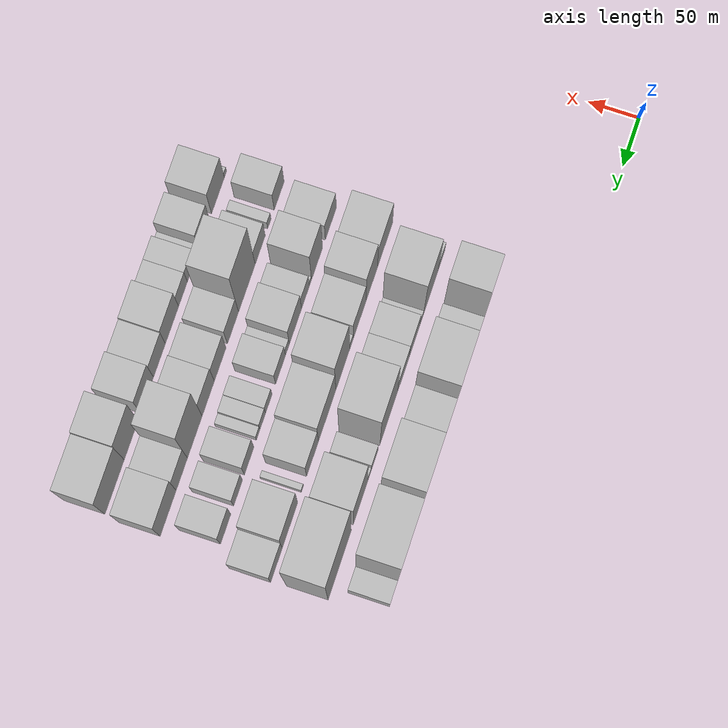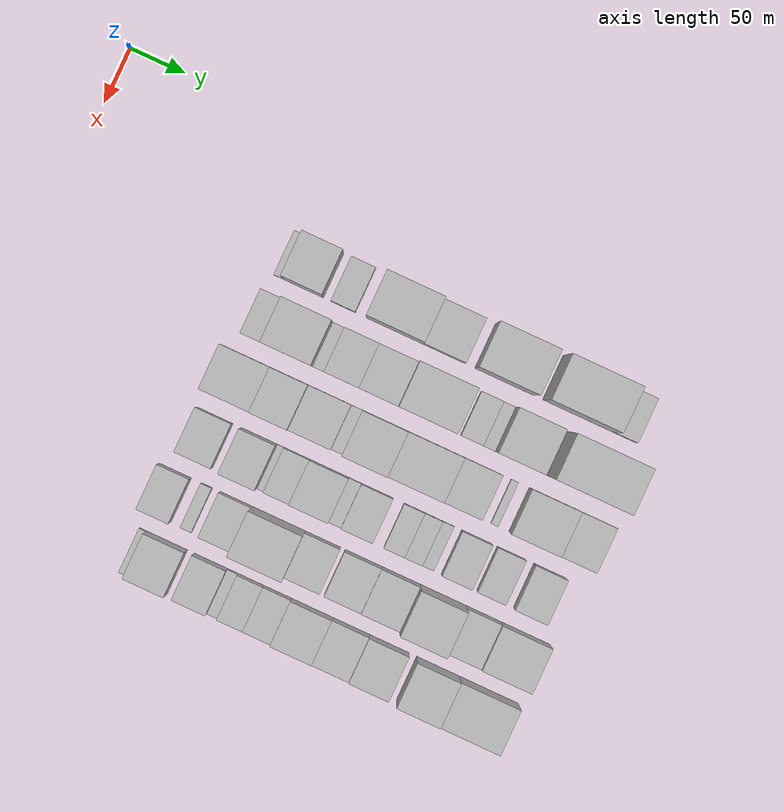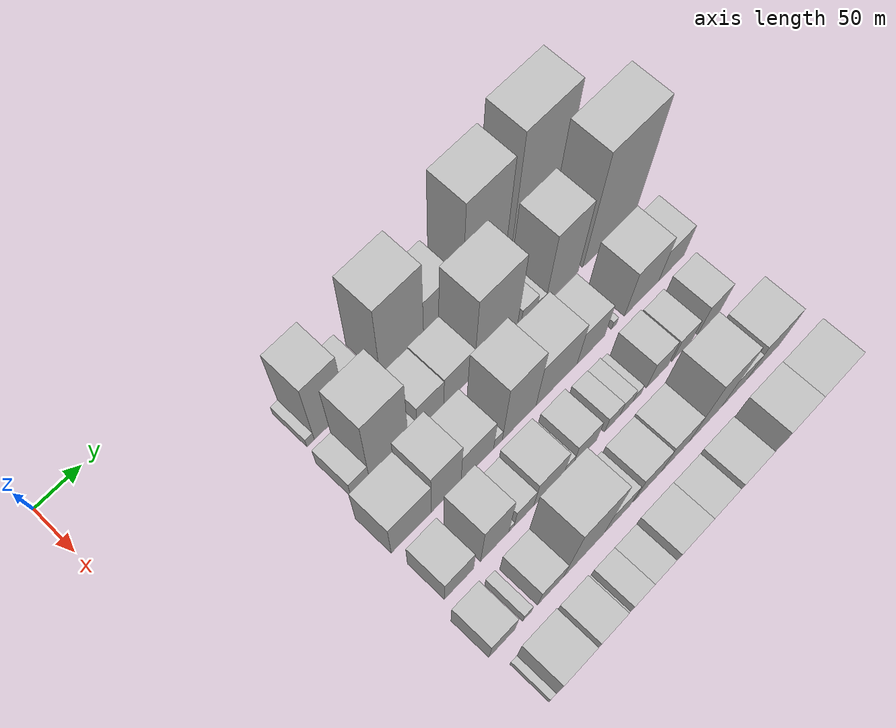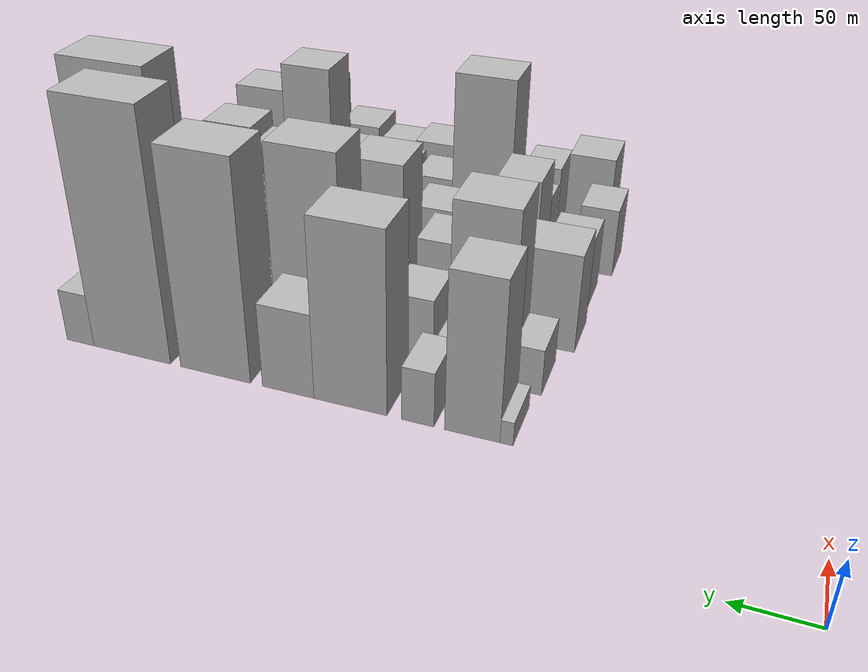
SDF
<sdf version="1.6">
 <world name="default">
  <model name="building_31">
   <static>1</static>
   <pose>100.0000 190.4567 0 0.000000 0.000000 0.000000</pose>
   <link name="link">
    <pose>0 0 9.00 0 0 0</pose>
    <collision name="collision"><geometry><box><size>40.0000 8.4245 18.0000</size></box></geometry></collision>
    <visual name="visual">
     <cast_shadows>0</cast_shadows>
     <geometry><box><size>40.0000 8.4245 18.0000</size></box></geometry>
     <material>
      <script>
       <uri>model://HANNAS_wall/materials/scripts</uri>
       <uri>model://HANNAS_wall/materials/textures</uri>
       <name>vrc/HANNAS_wall</name>
      </script>
     </material>
    </visual>
   </link>
  </model>
  <model name="building_32">
   <static>1</static>
   <pose>100.0000 212.8879 0 0.000000 0.000000 0.000000</pose>
   <link name="link">
    <pose>0 0 60.00 0 0 0</pose>
    <collision name="collision"><geometry><box><size>40.0000 36.4380 120.0000</size></box></geometry></collision>
    <visual name="visual">
     <cast_shadows>0</cast_shadows>
     <geometry><box><size>40.0000 36.4380 120.0000</size></box></geometry>
     <material>
      <script>
       <uri>model://HANNAS_wall/materials/scripts</uri>
       <uri>model://HANNAS_wall/materials/textures</uri>
       <name>vrc/HANNAS_wall</name>
      </script>
     </material>
    </visual>
   </link>
  </model>
  <model name="building_33">
   <static>1</static>
   <pose>100.0000 249.1040 0 0.000000 0.000000 0.000000</pose>
   <link name="link">
    <pose>0 0 21.00 0 0 0</pose>
    <collision name="collision"><geometry><box><size>40.0000 21.9940 42.0000</size></box></geometry></collision>
    <visual name="visual">
     <cast_shadows>0</cast_shadows>
     <geometry><box><size>40.0000 21.9940 42.0000</size></box></geometry>
     <material>
      <script>
       <uri>model://HANNAS_wall/materials/scripts</uri>
       <uri>model://HANNAS_wall/materials/textures</uri>
       <name>vrc/HANNAS_wall</name>
      </script>
     </material>
    </visual>
   </link>
  </model>
  <model name="building_34">
   <static>1</static>
   <pose>100.0000 295.8388 0 0.000000 0.000000 0.000000</pose>
   <link name="link">
    <pose>0 0 69.00 0 0 0</pose>
    <collision name="collision"><geometry><box><size>40.0000 51.4757 138.0000</size></box></geometry></collision>
    <visual name="visual">
     <cast_shadows>0</cast_shadows>
     <geometry><box><size>40.0000 51.4757 138.0000</size></box></geometry>
     <material>
      <script>
       <uri>model://HANNAS_wall/materials/scripts</uri>
       <uri>model://HANNAS_wall/materials/textures</uri>
       <name>vrc/HANNAS_wall</name>
      </script>
     </material>
    </visual>
   </link>
  </model>
  <model name="building_35">
   <static>1</static>
   <pose>100.0000 340.4338 0 0.000000 0.000000 0.000000</pose>
   <link name="link">
    <pose>0 0 33.00 0 0 0</pose>
    <collision name="collision"><geometry><box><size>40.0000 37.7142 66.0000</size></box></geometry></collision>
    <visual name="visual">
     <cast_shadows>0</cast_shadows>
     <geometry><box><size>40.0000 37.7142 66.0000</size></box></geometry>
     <material>
      <script>
       <uri>model://HANNAS_wall/materials/scripts</uri>
       <uri>model://HANNAS_wall/materials/textures</uri>
       <name>vrc/HANNAS_wall</name>
      </script>
     </material>
    </visual>
   </link>
  </model>
  <model name="building_36">
   <static>1</static>
   <pose>100.0000 395.0340 0 0.000000 0.000000 0.000000</pose>
   <link name="link">
    <pose>0 0 84.00 0 0 0</pose>
    <collision name="collision"><geometry><box><size>40.0000 53.4863 168.0000</size></box></geometry></collision>
    <visual name="visual">
     <cast_shadows>0</cast_shadows>
     <geometry><box><size>40.0000 53.4863 168.0000</size></box></geometry>
     <material>
      <script>
       <uri>model://HANNAS_wall/materials/scripts</uri>
       <uri>model://HANNAS_wall/materials/textures</uri>
       <name>vrc/HANNAS_wall</name>
      </script>
     </material>
    </visual>
   </link>
  </model>
  <model name="building_37">
   <static>1</static>
   <pose>100.0000 460.7381 0 0.000000 0.000000 0.000000</pose>
   <link name="link">
    <pose>0 0 96.00 0 0 0</pose>
    <collision name="collision"><geometry><box><size>40.0000 61.9219 192.0000</size></box></geometry></collision>
    <visual name="visual">
     <cast_shadows>0</cast_shadows>
     <geometry><box><size>40.0000 61.9219 192.0000</size></box></geometry>
     <material>
      <script>
       <uri>model://HANNAS_wall/materials/scripts</uri>
       <uri>model://HANNAS_wall/materials/textures</uri>
       <name>vrc/HANNAS_wall</name>
      </script>
     </material>
    </visual>
   </link>
  </model>
  <model name="building_38">
   <static>1</static>
   <pose>100.0000 502.8438 0 0.000000 0.000000 0.000000</pose>
   <link name="link">
    <pose>0 0 21.00 0 0 0</pose>
    <collision name="collision"><geometry><box><size>40.0000 22.2894 42.0000</size></box></geometry></collision>
    <visual name="visual">
     <cast_shadows>0</cast_shadows>
     <geometry><box><size>40.0000 22.2894 42.0000</size></box></geometry>
     <material>
      <script>
       <uri>model://HANNAS_wall/materials/scripts</uri>
       <uri>model://HANNAS_wall/materials/textures</uri>
       <name>vrc/HANNAS_wall</name>
      </script>
     </material>
    </visual>
   </link>
  </model>
  <model name="building_82">
   <static>1</static>
   <pose>155.0000 192.0896 0 0.000000 0.000000 0.000000</pose>
   <link name="link">
    <pose>0 0 18.00 0 0 0</pose>
    <collision name="collision"><geometry><box><size>40.0000 20.5973 36.0000</size></box></geometry></collision>
    <visual name="visual">
     <cast_shadows>0</cast_shadows>
     <geometry><box><size>40.0000 20.5973 36.0000</size></box></geometry>
     <material>
      <script>
       <uri>model://HANNAS_wall/materials/scripts</uri>
       <uri>model://HANNAS_wall/materials/textures</uri>
       <name>vrc/HANNAS_wall</name>
      </script>
     </material>
    </visual>
   </link>
  </model>
  <model name="building_83">
   <static>1</static>
   <pose>155.0000 224.6749 0 0.000000 0.000000 0.000000</pose>
   <link name="link">
    <pose>0 0 67.50 0 0 0</pose>
    <collision name="collision"><geometry><box><size>40.0000 44.5734 135.0000</size></box></geometry></collision>
    <visual name="visual">
     <cast_shadows>0</cast_shadows>
     <geometry><box><size>40.0000 44.5734 135.0000</size></box></geometry>
     <material>
      <script>
       <uri>model://HANNAS_wall/materials/scripts</uri>
       <uri>model://HANNAS_wall/materials/textures</uri>
       <name>vrc/HANNAS_wall</name>
      </script>
     </material>
    </visual>
   </link>
  </model>
  <model name="building_84">
   <static>1</static>
   <pose>155.0000 252.2506 0 0.000000 0.000000 0.000000</pose>
   <link name="link">
    <pose>0 0 12.00 0 0 0</pose>
    <collision name="collision"><geometry><box><size>40.0000 10.5779 24.0000</size></box></geometry></collision>
    <visual name="visual">
     <cast_shadows>0</cast_shadows>
     <geometry><box><size>40.0000 10.5779 24.0000</size></box></geometry>
     <material>
      <script>
       <uri>model://HANNAS_wall/materials/scripts</uri>
       <uri>model://HANNAS_wall/materials/textures</uri>
       <name>vrc/HANNAS_wall</name>
      </script>
     </material>
    </visual>
   </link>
  </model>
  <model name="building_85">
   <static>1</static>
   <pose>155.0000 273.1784 0 0.000000 0.000000 0.000000</pose>
   <link name="link">
    <pose>0 0 28.50 0 0 0</pose>
    <collision name="collision"><geometry><box><size>40.0000 31.2779 57.0000</size></box></geometry></collision>
    <visual name="visual">
     <cast_shadows>0</cast_shadows>
     <geometry><box><size>40.0000 31.2779 57.0000</size></box></geometry>
     <material>
      <script>
       <uri>model://HANNAS_wall/materials/scripts</uri>
       <uri>model://HANNAS_wall/materials/textures</uri>
       <name>vrc/HANNAS_wall</name>
      </script>
     </material>
    </visual>
   </link>
  </model>
  <model name="building_86">
   <static>1</static>
   <pose>155.0000 306.5657 0 0.000000 0.000000 0.000000</pose>
   <link name="link">
    <pose>0 0 30.00 0 0 0</pose>
    <collision name="collision"><geometry><box><size>40.0000 35.4967 60.0000</size></box></geometry></collision>
    <visual name="visual">
     <cast_shadows>0</cast_shadows>
     <geometry><box><size>40.0000 35.4967 60.0000</size></box></geometry>
     <material>
      <script>
       <uri>model://HANNAS_wall/materials/scripts</uri>
       <uri>model://HANNAS_wall/materials/textures</uri>
       <name>vrc/HANNAS_wall</name>
      </script>
     </material>
    </visual>
   </link>
  </model>
  <model name="building_87">
   <static>1</static>
   <pose>155.0000 350.0649 0 0.000000 0.000000 0.000000</pose>
   <link name="link">
    <pose>0 0 76.50 0 0 0</pose>
    <collision name="collision"><geometry><box><size>40.0000 51.5017 153.0000</size></box></geometry></collision>
    <visual name="visual">
     <cast_shadows>0</cast_shadows>
     <geometry><box><size>40.0000 51.5017 153.0000</size></box></geometry>
     <material>
      <script>
       <uri>model://HANNAS_wall/materials/scripts</uri>
       <uri>model://HANNAS_wall/materials/textures</uri>
       <name>vrc/HANNAS_wall</name>
      </script>
     </material>
    </visual>
   </link>
  </model>
  <model name="building_88">
   <static>1</static>
   <pose>155.0000 390.8027 0 0.000000 0.000000 0.000000</pose>
   <link name="link">
    <pose>0 0 19.50 0 0 0</pose>
    <collision name="collision"><geometry><box><size>40.0000 19.9741 39.0000</size></box></geometry></collision>
    <visual name="visual">
     <cast_shadows>0</cast_shadows>
     <geometry><box><size>40.0000 19.9741 39.0000</size></box></geometry>
     <material>
      <script>
       <uri>model://HANNAS_wall/materials/scripts</uri>
       <uri>model://HANNAS_wall/materials/textures</uri>
       <name>vrc/HANNAS_wall</name>
      </script>
     </material>
    </visual>
   </link>
  </model>
  <model name="building_89">
   <static>1</static>
   <pose>155.0000 406.2895 0 0.000000 0.000000 0.000000</pose>
   <link name="link">
    <pose>0 0 12.00 0 0 0</pose>
    <collision name="collision"><geometry><box><size>40.0000 10.9995 24.0000</size></box></geometry></collision>
    <visual name="visual">
     <cast_shadows>0</cast_shadows>
     <geometry><box><size>40.0000 10.9995 24.0000</size></box></geometry>
     <material>
      <script>
       <uri>model://HANNAS_wall/materials/scripts</uri>
       <uri>model://HANNAS_wall/materials/textures</uri>
       <name>vrc/HANNAS_wall</name>
      </script>
     </material>
    </visual>
   </link>
  </model>
  <model name="building_90">
   <static>1</static>
   <pose>155.0000 432.6133 0 0.000000 0.000000 0.000000</pose>
   <link name="link">
    <pose>0 0 64.50 0 0 0</pose>
    <collision name="collision"><geometry><box><size>40.0000 41.6481 129.0000</size></box></geometry></collision>
    <visual name="visual">
     <cast_shadows>0</cast_shadows>
     <geometry><box><size>40.0000 41.6481 129.0000</size></box></geometry>
     <material>
      <script>
       <uri>model://HANNAS_wall/materials/scripts</uri>
       <uri>model://HANNAS_wall/materials/textures</uri>
       <name>vrc/HANNAS_wall</name>
      </script>
     </material>
    </visual>
   </link>
  </model>
  <model name="building_91">
   <static>1</static>
   <pose>155.0000 492.7192 0 0.000000 0.000000 0.000000</pose>
   <link name="link">
    <pose>0 0 96.00 0 0 0</pose>
    <collision name="collision"><geometry><box><size>40.0000 66.5637 192.0000</size></box></geometry></collision>
    <visual name="visual">
     <cast_shadows>0</cast_shadows>
     <geometry><box><size>40.0000 66.5637 192.0000</size></box></geometry>
     <material>
      <script>
       <uri>model://HANNAS_wall/materials/scripts</uri>
       <uri>model://HANNAS_wall/materials/textures</uri>
       <name>vrc/HANNAS_wall</name>
      </script>
     </material>
    </visual>
   </link>
  </model>
  <model name="building_130">
   <static>1</static>
   <pose>210.0000 194.3836 0 0.000000 0.000000 0.000000</pose>
   <link name="link">
    <pose>0 0 39.00 0 0 0</pose>
    <collision name="collision"><geometry><box><size>40.0000 45.3554 78.0000</size></box></geometry></collision>
    <visual name="visual">
     <cast_shadows>0</cast_shadows>
     <geometry><box><size>40.0000 45.3554 78.0000</size></box></geometry>
     <material>
      <script>
       <uri>model://HANNAS_wall/materials/scripts</uri>
       <uri>model://HANNAS_wall/materials/textures</uri>
       <name>vrc/HANNAS_wall</name>
      </script>
     </material>
    </visual>
   </link>
  </model>
  <model name="building_131">
   <static>1</static>
   <pose>210.0000 234.0356 0 0.000000 0.000000 0.000000</pose>
   <link name="link">
    <pose>0 0 49.50 0 0 0</pose>
    <collision name="collision"><geometry><box><size>40.0000 33.9487 99.0000</size></box></geometry></collision>
    <visual name="visual">
     <cast_shadows>0</cast_shadows>
     <geometry><box><size>40.0000 33.9487 99.0000</size></box></geometry>
     <material>
      <script>
       <uri>model://HANNAS_wall/materials/scripts</uri>
       <uri>model://HANNAS_wall/materials/textures</uri>
       <name>vrc/HANNAS_wall</name>
      </script>
     </material>
    </visual>
   </link>
  </model>
  <model name="building_132">
   <static>1</static>
   <pose>210.0000 270.1150 0 0.000000 0.000000 0.000000</pose>
   <link name="link">
    <pose>0 0 34.50 0 0 0</pose>
    <collision name="collision"><geometry><box><size>40.0000 38.2101 69.0000</size></box></geometry></collision>
    <visual name="visual">
     <cast_shadows>0</cast_shadows>
     <geometry><box><size>40.0000 38.2101 69.0000</size></box></geometry>
     <material>
      <script>
       <uri>model://HANNAS_wall/materials/scripts</uri>
       <uri>model://HANNAS_wall/materials/textures</uri>
       <name>vrc/HANNAS_wall</name>
      </script>
     </material>
    </visual>
   </link>
  </model>
  <model name="building_133">
   <static>1</static>
   <pose>210.0000 294.3600 0 0.000000 0.000000 0.000000</pose>
   <link name="link">
    <pose>0 0 12.00 0 0 0</pose>
    <collision name="collision"><geometry><box><size>40.0000 10.2799 24.0000</size></box></geometry></collision>
    <visual name="visual">
     <cast_shadows>0</cast_shadows>
     <geometry><box><size>40.0000 10.2799 24.0000</size></box></geometry>
     <material>
      <script>
       <uri>model://HANNAS_wall/materials/scripts</uri>
       <uri>model://HANNAS_wall/materials/textures</uri>
       <name>vrc/HANNAS_wall</name>
      </script>
     </material>
    </visual>
   </link>
  </model>
  <model name="building_134">
   <static>1</static>
   <pose>210.0000 319.7138 0 0.000000 0.000000 0.000000</pose>
   <link name="link">
    <pose>0 0 61.50 0 0 0</pose>
    <collision name="collision"><geometry><box><size>40.0000 40.4276 123.0000</size></box></geometry></collision>
    <visual name="visual">
     <cast_shadows>0</cast_shadows>
     <geometry><box><size>40.0000 40.4276 123.0000</size></box></geometry>
     <material>
      <script>
       <uri>model://HANNAS_wall/materials/scripts</uri>
       <uri>model://HANNAS_wall/materials/textures</uri>
       <name>vrc/HANNAS_wall</name>
      </script>
     </material>
    </visual>
   </link>
  </model>
  <model name="building_135">
   <static>1</static>
   <pose>210.0000 365.1604 0 0.000000 0.000000 0.000000</pose>
   <link name="link">
    <pose>0 0 43.50 0 0 0</pose>
    <collision name="collision"><geometry><box><size>40.0000 50.4655 87.0000</size></box></geometry></collision>
    <visual name="visual">
     <cast_shadows>0</cast_shadows>
     <geometry><box><size>40.0000 50.4655 87.0000</size></box></geometry>
     <material>
      <script>
       <uri>model://HANNAS_wall/materials/scripts</uri>
       <uri>model://HANNAS_wall/materials/textures</uri>
       <name>vrc/HANNAS_wall</name>
      </script>
     </material>
    </visual>
   </link>
  </model>
  <model name="building_136">
   <static>1</static>
   <pose>210.0000 407.5701 0 0.000000 0.000000 0.000000</pose>
   <link name="link">
    <pose>0 0 33.00 0 0 0</pose>
    <collision name="collision"><geometry><box><size>40.0000 34.3540 66.0000</size></box></geometry></collision>
    <visual name="visual">
     <cast_shadows>0</cast_shadows>
     <geometry><box><size>40.0000 34.3540 66.0000</size></box></geometry>
     <material>
      <script>
       <uri>model://HANNAS_wall/materials/scripts</uri>
       <uri>model://HANNAS_wall/materials/textures</uri>
       <name>vrc/HANNAS_wall</name>
      </script>
     </material>
    </visual>
   </link>
  </model>
  <model name="building_137">
   <static>1</static>
   <pose>210.0000 436.9792 0 0.000000 0.000000 0.000000</pose>
   <link name="link">
    <pose>0 0 7.50 0 0 0</pose>
    <collision name="collision"><geometry><box><size>40.0000 6.4642 15.0000</size></box></geometry></collision>
    <visual name="visual">
     <cast_shadows>0</cast_shadows>
     <geometry><box><size>40.0000 6.4642 15.0000</size></box></geometry>
     <material>
      <script>
       <uri>model://HANNAS_wall/materials/scripts</uri>
       <uri>model://HANNAS_wall/materials/textures</uri>
       <name>vrc/HANNAS_wall</name>
      </script>
     </material>
    </visual>
   </link>
  </model>
  <model name="building_138">
   <static>1</static>
   <pose>210.0000 472.3123 0 0.000000 0.000000 0.000000</pose>
   <link name="link">
    <pose>0 0 42.00 0 0 0</pose>
    <collision name="collision"><geometry><box><size>40.0000 44.2020 84.0000</size></box></geometry></collision>
    <visual name="visual">
     <cast_shadows>0</cast_shadows>
     <geometry><box><size>40.0000 44.2020 84.0000</size></box></geometry>
     <material>
      <script>
       <uri>model://HANNAS_wall/materials/scripts</uri>
       <uri>model://HANNAS_wall/materials/textures</uri>
       <name>vrc/HANNAS_wall</name>
      </script>
     </material>
    </visual>
   </link>
  </model>
  <model name="building_139">
   <static>1</static>
   <pose>210.0000 510.9368 0 0.000000 0.000000 0.000000</pose>
   <link name="link">
    <pose>0 0 28.50 0 0 0</pose>
    <collision name="collision"><geometry><box><size>40.0000 33.0471 57.0000</size></box></geometry></collision>
    <visual name="visual">
     <cast_shadows>0</cast_shadows>
     <geometry><box><size>40.0000 33.0471 57.0000</size></box></geometry>
     <material>
      <script>
       <uri>model://HANNAS_wall/materials/scripts</uri>
       <uri>model://HANNAS_wall/materials/textures</uri>
       <name>vrc/HANNAS_wall</name>
      </script>
     </material>
    </visual>
   </link>
  </model>
  <model name="building_182">
   <static>1</static>
   <pose>265.0000 190.9287 0 0.000000 0.000000 0.000000</pose>
   <link name="link">
    <pose>0 0 28.50 0 0 0</pose>
    <collision name="collision"><geometry><box><size>40.0000 32.7813 57.0000</size></box></geometry></collision>
    <visual name="visual">
     <cast_shadows>0</cast_shadows>
     <geometry><box><size>40.0000 32.7813 57.0000</size></box></geometry>
     <material>
      <script>
       <uri>model://HANNAS_wall/materials/scripts</uri>
       <uri>model://HANNAS_wall/materials/textures</uri>
       <name>vrc/HANNAS_wall</name>
      </script>
     </material>
    </visual>
   </link>
  </model>
  <model name="building_183">
   <static>1</static>
   <pose>265.0000 231.5340 0 0.000000 0.000000 0.000000</pose>
   <link name="link">
    <pose>0 0 49.50 0 0 0</pose>
    <collision name="collision"><geometry><box><size>40.0000 32.4292 99.0000</size></box></geometry></collision>
    <visual name="visual">
     <cast_shadows>0</cast_shadows>
     <geometry><box><size>40.0000 32.4292 99.0000</size></box></geometry>
     <material>
      <script>
       <uri>model://HANNAS_wall/materials/scripts</uri>
       <uri>model://HANNAS_wall/materials/textures</uri>
       <name>vrc/HANNAS_wall</name>
      </script>
     </material>
    </visual>
   </link>
  </model>
  <model name="building_184">
   <static>1</static>
   <pose>265.0000 250.7761 0 0.000000 0.000000 0.000000</pose>
   <link name="link">
    <pose>0 0 7.50 0 0 0</pose>
    <collision name="collision"><geometry><box><size>40.0000 6.0551 15.0000</size></box></geometry></collision>
    <visual name="visual">
     <cast_shadows>0</cast_shadows>
     <geometry><box><size>40.0000 6.0551 15.0000</size></box></geometry>
     <material>
      <script>
       <uri>model://HANNAS_wall/materials/scripts</uri>
       <uri>model://HANNAS_wall/materials/textures</uri>
       <name>vrc/HANNAS_wall</name>
      </script>
     </material>
    </visual>
   </link>
  </model>
  <model name="building_185">
   <static>1</static>
   <pose>265.0000 265.3908 0 0.000000 0.000000 0.000000</pose>
   <link name="link">
    <pose>0 0 22.50 0 0 0</pose>
    <collision name="collision"><geometry><box><size>40.0000 23.1744 45.0000</size></box></geometry></collision>
    <visual name="visual">
     <cast_shadows>0</cast_shadows>
     <geometry><box><size>40.0000 23.1744 45.0000</size></box></geometry>
     <material>
      <script>
       <uri>model://HANNAS_wall/materials/scripts</uri>
       <uri>model://HANNAS_wall/materials/textures</uri>
       <name>vrc/HANNAS_wall</name>
      </script>
     </material>
    </visual>
   </link>
  </model>
  <model name="building_186">
   <static>1</static>
   <pose>265.0000 294.6903 0 0.000000 0.000000 0.000000</pose>
   <link name="link">
    <pose>0 0 31.50 0 0 0</pose>
    <collision name="collision"><geometry><box><size>40.0000 35.4244 63.0000</size></box></geometry></collision>
    <visual name="visual">
     <cast_shadows>0</cast_shadows>
     <geometry><box><size>40.0000 35.4244 63.0000</size></box></geometry>
     <material>
      <script>
       <uri>model://HANNAS_wall/materials/scripts</uri>
       <uri>model://HANNAS_wall/materials/textures</uri>
       <name>vrc/HANNAS_wall</name>
      </script>
     </material>
    </visual>
   </link>
  </model>
  <model name="building_187">
   <static>1</static>
   <pose>265.0000 318.0690 0 0.000000 0.000000 0.000000</pose>
   <link name="link">
    <pose>0 0 13.50 0 0 0</pose>
    <collision name="collision"><geometry><box><size>40.0000 11.3331 27.0000</size></box></geometry></collision>
    <visual name="visual">
     <cast_shadows>0</cast_shadows>
     <geometry><box><size>40.0000 11.3331 27.0000</size></box></geometry>
     <material>
      <script>
       <uri>model://HANNAS_wall/materials/scripts</uri>
       <uri>model://HANNAS_wall/materials/textures</uri>
       <name>vrc/HANNAS_wall</name>
      </script>
     </material>
    </visual>
   </link>
  </model>
  <model name="building_188">
   <static>1</static>
   <pose>265.0000 338.0151 0 0.000000 0.000000 0.000000</pose>
   <link name="link">
    <pose>0 0 24.00 0 0 0</pose>
    <collision name="collision"><geometry><box><size>40.0000 28.5590 48.0000</size></box></geometry></collision>
    <visual name="visual">
     <cast_shadows>0</cast_shadows>
     <geometry><box><size>40.0000 28.5590 48.0000</size></box></geometry>
     <material>
      <script>
       <uri>model://HANNAS_wall/materials/scripts</uri>
       <uri>model://HANNAS_wall/materials/textures</uri>
       <name>vrc/HANNAS_wall</name>
      </script>
     </material>
    </visual>
   </link>
  </model>
  <model name="building_189">
   <static>1</static>
   <pose>265.0000 371.6639 0 0.000000 0.000000 0.000000</pose>
   <link name="link">
    <pose>0 0 16.50 0 0 0</pose>
    <collision name="collision"><geometry><box><size>40.0000 18.7387 33.0000</size></box></geometry></collision>
    <visual name="visual">
     <cast_shadows>0</cast_shadows>
     <geometry><box><size>40.0000 18.7387 33.0000</size></box></geometry>
     <material>
      <script>
       <uri>model://HANNAS_wall/materials/scripts</uri>
       <uri>model://HANNAS_wall/materials/textures</uri>
       <name>vrc/HANNAS_wall</name>
      </script>
     </material>
    </visual>
   </link>
  </model>
  <model name="building_190">
   <static>1</static>
   <pose>265.0000 389.1189 0 0.000000 0.000000 0.000000</pose>
   <link name="link">
    <pose>0 0 15.00 0 0 0</pose>
    <collision name="collision"><geometry><box><size>40.0000 16.1715 30.0000</size></box></geometry></collision>
    <visual name="visual">
     <cast_shadows>0</cast_shadows>
     <geometry><box><size>40.0000 16.1715 30.0000</size></box></geometry>
     <material>
      <script>
       <uri>model://HANNAS_wall/materials/scripts</uri>
       <uri>model://HANNAS_wall/materials/textures</uri>
       <name>vrc/HANNAS_wall</name>
      </script>
     </material>
    </visual>
   </link>
  </model>
  <model name="building_191">
   <static>1</static>
   <pose>265.0000 402.3211 0 0.000000 0.000000 0.000000</pose>
   <link name="link">
    <pose>0 0 10.50 0 0 0</pose>
    <collision name="collision"><geometry><box><size>40.0000 10.2328 21.0000</size></box></geometry></collision>
    <visual name="visual">
     <cast_shadows>0</cast_shadows>
     <geometry><box><size>40.0000 10.2328 21.0000</size></box></geometry>
     <material>
      <script>
       <uri>model://HANNAS_wall/materials/scripts</uri>
       <uri>model://HANNAS_wall/materials/textures</uri>
       <name>vrc/HANNAS_wall</name>
      </script>
     </material>
    </visual>
   </link>
  </model>
  <model name="building_192">
   <static>1</static>
   <pose>265.0000 427.9994 0 0.000000 0.000000 0.000000</pose>
   <link name="link">
    <pose>0 0 27.00 0 0 0</pose>
    <collision name="collision"><geometry><box><size>40.0000 27.1240 54.0000</size></box></geometry></collision>
    <visual name="visual">
     <cast_shadows>0</cast_shadows>
     <geometry><box><size>40.0000 27.1240 54.0000</size></box></geometry>
     <material>
      <script>
       <uri>model://HANNAS_wall/materials/scripts</uri>
       <uri>model://HANNAS_wall/materials/textures</uri>
       <name>vrc/HANNAS_wall</name>
      </script>
     </material>
    </visual>
   </link>
  </model>
  <model name="building_193">
   <static>1</static>
   <pose>265.0000 459.2048 0 0.000000 0.000000 0.000000</pose>
   <link name="link">
    <pose>0 0 22.50 0 0 0</pose>
    <collision name="collision"><geometry><box><size>40.0000 25.2868 45.0000</size></box></geometry></collision>
    <visual name="visual">
     <cast_shadows>0</cast_shadows>
     <geometry><box><size>40.0000 25.2868 45.0000</size></box></geometry>
     <material>
      <script>
       <uri>model://HANNAS_wall/materials/scripts</uri>
       <uri>model://HANNAS_wall/materials/textures</uri>
       <name>vrc/HANNAS_wall</name>
      </script>
     </material>
    </visual>
   </link>
  </model>
  <model name="building_194">
   <static>1</static>
   <pose>265.0000 494.3820 0 0.000000 0.000000 0.000000</pose>
   <link name="link">
    <pose>0 0 28.50 0 0 0</pose>
    <collision name="collision"><geometry><box><size>40.0000 29.0676 57.0000</size></box></geometry></collision>
    <visual name="visual">
     <cast_shadows>0</cast_shadows>
     <geometry><box><size>40.0000 29.0676 57.0000</size></box></geometry>
     <material>
      <script>
       <uri>model://HANNAS_wall/materials/scripts</uri>
       <uri>model://HANNAS_wall/materials/textures</uri>
       <name>vrc/HANNAS_wall</name>
      </script>
     </material>
    </visual>
   </link>
  </model>
  <model name="building_236">
   <static>1</static>
   <pose>320.0000 180.5870 0 0.000000 0.000000 0.000000</pose>
   <link name="link">
    <pose>0 0 28.50 0 0 0</pose>
    <collision name="collision"><geometry><box><size>40.0000 28.9547 57.0000</size></box></geometry></collision>
    <visual name="visual">
     <cast_shadows>0</cast_shadows>
     <geometry><box><size>40.0000 28.9547 57.0000</size></box></geometry>
     <material>
      <script>
       <uri>model://HANNAS_wall/materials/scripts</uri>
       <uri>model://HANNAS_wall/materials/textures</uri>
       <name>vrc/HANNAS_wall</name>
      </script>
     </material>
    </visual>
   </link>
  </model>
  <model name="building_237">
   <static>1</static>
   <pose>320.0000 209.1116 0 0.000000 0.000000 0.000000</pose>
   <link name="link">
    <pose>0 0 12.00 0 0 0</pose>
    <collision name="collision"><geometry><box><size>40.0000 10.0946 24.0000</size></box></geometry></collision>
    <visual name="visual">
     <cast_shadows>0</cast_shadows>
     <geometry><box><size>40.0000 10.0946 24.0000</size></box></geometry>
     <material>
      <script>
       <uri>model://HANNAS_wall/materials/scripts</uri>
       <uri>model://HANNAS_wall/materials/textures</uri>
       <name>vrc/HANNAS_wall</name>
      </script>
     </material>
    </visual>
   </link>
  </model>
  <model name="building_238">
   <static>1</static>
   <pose>320.0000 235.8464 0 0.000000 0.000000 0.000000</pose>
   <link name="link">
    <pose>0 0 25.50 0 0 0</pose>
    <collision name="collision"><geometry><box><size>40.0000 29.3749 51.0000</size></box></geometry></collision>
    <visual name="visual">
     <cast_shadows>0</cast_shadows>
     <geometry><box><size>40.0000 29.3749 51.0000</size></box></geometry>
     <material>
      <script>
       <uri>model://HANNAS_wall/materials/scripts</uri>
       <uri>model://HANNAS_wall/materials/textures</uri>
       <name>vrc/HANNAS_wall</name>
      </script>
     </material>
    </visual>
   </link>
  </model>
  <model name="building_239">
   <static>1</static>
   <pose>320.0000 274.4539 0 0.000000 0.000000 0.000000</pose>
   <link name="link">
    <pose>0 0 75.00 0 0 0</pose>
    <collision name="collision"><geometry><box><size>40.0000 47.8401 150.0000</size></box></geometry></collision>
    <visual name="visual">
     <cast_shadows>0</cast_shadows>
     <geometry><box><size>40.0000 47.8401 150.0000</size></box></geometry>
     <material>
      <script>
       <uri>model://HANNAS_wall/materials/scripts</uri>
       <uri>model://HANNAS_wall/materials/textures</uri>
       <name>vrc/HANNAS_wall</name>
      </script>
     </material>
    </visual>
   </link>
  </model>
  <model name="building_240">
   <static>1</static>
   <pose>320.0000 314.3395 0 0.000000 0.000000 0.000000</pose>
   <link name="link">
    <pose>0 0 30.00 0 0 0</pose>
    <collision name="collision"><geometry><box><size>40.0000 31.9312 60.0000</size></box></geometry></collision>
    <visual name="visual">
     <cast_shadows>0</cast_shadows>
     <geometry><box><size>40.0000 31.9312 60.0000</size></box></geometry>
     <material>
      <script>
       <uri>model://HANNAS_wall/materials/scripts</uri>
       <uri>model://HANNAS_wall/materials/textures</uri>
       <name>vrc/HANNAS_wall</name>
      </script>
     </material>
    </visual>
   </link>
  </model>
  <model name="building_241">
   <static>1</static>
   <pose>320.0000 350.8989 0 0.000000 0.000000 0.000000</pose>
   <link name="link">
    <pose>0 0 31.50 0 0 0</pose>
    <collision name="collision"><geometry><box><size>40.0000 33.1876 63.0000</size></box></geometry></collision>
    <visual name="visual">
     <cast_shadows>0</cast_shadows>
     <geometry><box><size>40.0000 33.1876 63.0000</size></box></geometry>
     <material>
      <script>
       <uri>model://HANNAS_wall/materials/scripts</uri>
       <uri>model://HANNAS_wall/materials/textures</uri>
       <name>vrc/HANNAS_wall</name>
      </script>
     </material>
    </visual>
   </link>
  </model>
  <model name="building_242">
   <static>1</static>
   <pose>320.0000 384.7787 0 0.000000 0.000000 0.000000</pose>
   <link name="link">
    <pose>0 0 34.50 0 0 0</pose>
    <collision name="collision"><geometry><box><size>40.0000 34.5721 69.0000</size></box></geometry></collision>
    <visual name="visual">
     <cast_shadows>0</cast_shadows>
     <geometry><box><size>40.0000 34.5721 69.0000</size></box></geometry>
     <material>
      <script>
       <uri>model://HANNAS_wall/materials/scripts</uri>
       <uri>model://HANNAS_wall/materials/textures</uri>
       <name>vrc/HANNAS_wall</name>
      </script>
     </material>
    </visual>
   </link>
  </model>
  <model name="building_243">
   <static>1</static>
   <pose>320.0000 422.7716 0 0.000000 0.000000 0.000000</pose>
   <link name="link">
    <pose>0 0 69.00 0 0 0</pose>
    <collision name="collision"><geometry><box><size>40.0000 41.4136 138.0000</size></box></geometry></collision>
    <visual name="visual">
     <cast_shadows>0</cast_shadows>
     <geometry><box><size>40.0000 41.4136 138.0000</size></box></geometry>
     <material>
      <script>
       <uri>model://HANNAS_wall/materials/scripts</uri>
       <uri>model://HANNAS_wall/materials/textures</uri>
       <name>vrc/HANNAS_wall</name>
      </script>
     </material>
    </visual>
   </link>
  </model>
  <model name="building_244">
   <static>1</static>
   <pose>320.0000 459.3075 0 0.000000 0.000000 0.000000</pose>
   <link name="link">
    <pose>0 0 31.50 0 0 0</pose>
    <collision name="collision"><geometry><box><size>40.0000 31.6582 63.0000</size></box></geometry></collision>
    <visual name="visual">
     <cast_shadows>0</cast_shadows>
     <geometry><box><size>40.0000 31.6582 63.0000</size></box></geometry>
     <material>
      <script>
       <uri>model://HANNAS_wall/materials/scripts</uri>
       <uri>model://HANNAS_wall/materials/textures</uri>
       <name>vrc/HANNAS_wall</name>
      </script>
     </material>
    </visual>
   </link>
  </model>
  <model name="building_245">
   <static>1</static>
   <pose>320.0000 497.4393 0 0.000000 0.000000 0.000000</pose>
   <link name="link">
    <pose>0 0 39.00 0 0 0</pose>
    <collision name="collision"><geometry><box><size>40.0000 44.6054 78.0000</size></box></geometry></collision>
    <visual name="visual">
     <cast_shadows>0</cast_shadows>
     <geometry><box><size>40.0000 44.6054 78.0000</size></box></geometry>
     <material>
      <script>
       <uri>model://HANNAS_wall/materials/scripts</uri>
       <uri>model://HANNAS_wall/materials/textures</uri>
       <name>vrc/HANNAS_wall</name>
      </script>
     </material>
    </visual>
   </link>
  </model>
  <model name="building_288">
   <static>1</static>
   <pose>375.0000 176.8774 0 0.000000 0.000000 0.000000</pose>
   <link name="link">
    <pose>0 0 7.50 0 0 0</pose>
    <collision name="collision"><geometry><box><size>40.0000 6.6402 15.0000</size></box></geometry></collision>
    <visual name="visual">
     <cast_shadows>0</cast_shadows>
     <geometry><box><size>40.0000 6.6402 15.0000</size></box></geometry>
     <material>
      <script>
       <uri>model://HANNAS_wall/materials/scripts</uri>
       <uri>model://HANNAS_wall/materials/textures</uri>
       <name>vrc/HANNAS_wall</name>
      </script>
     </material>
    </visual>
   </link>
  </model>
  <model name="building_289">
   <static>1</static>
   <pose>375.0000 198.6354 0 0.000000 0.000000 0.000000</pose>
   <link name="link">
    <pose>0 0 36.00 0 0 0</pose>
    <collision name="collision"><geometry><box><size>40.0000 36.8757 72.0000</size></box></geometry></collision>
    <visual name="visual">
     <cast_shadows>0</cast_shadows>
     <geometry><box><size>40.0000 36.8757 72.0000</size></box></geometry>
     <material>
      <script>
       <uri>model://HANNAS_wall/materials/scripts</uri>
       <uri>model://HANNAS_wall/materials/textures</uri>
       <name>vrc/HANNAS_wall</name>
      </script>
     </material>
    </visual>
   </link>
  </model>
  <model name="building_290">
   <static>1</static>
   <pose>375.0000 238.3432 0 0.000000 0.000000 0.000000</pose>
   <link name="link">
    <pose>0 0 28.50 0 0 0</pose>
    <collision name="collision"><geometry><box><size>40.0000 30.5399 57.0000</size></box></geometry></collision>
    <visual name="visual">
     <cast_shadows>0</cast_shadows>
     <geometry><box><size>40.0000 30.5399 57.0000</size></box></geometry>
     <material>
      <script>
       <uri>model://HANNAS_wall/materials/scripts</uri>
       <uri>model://HANNAS_wall/materials/textures</uri>
       <name>vrc/HANNAS_wall</name>
      </script>
     </material>
    </visual>
   </link>
  </model>
  <model name="building_291">
   <static>1</static>
   <pose>375.0000 258.2675 0 0.000000 0.000000 0.000000</pose>
   <link name="link">
    <pose>0 0 10.50 0 0 0</pose>
    <collision name="collision"><geometry><box><size>40.0000 9.3085 21.0000</size></box></geometry></collision>
    <visual name="visual">
     <cast_shadows>0</cast_shadows>
     <geometry><box><size>40.0000 9.3085 21.0000</size></box></geometry>
     <material>
      <script>
       <uri>model://HANNAS_wall/materials/scripts</uri>
       <uri>model://HANNAS_wall/materials/textures</uri>
       <name>vrc/HANNAS_wall</name>
      </script>
     </material>
    </visual>
   </link>
  </model>
  <model name="building_292">
   <static>1</static>
   <pose>375.0000 274.6012 0 0.000000 0.000000 0.000000</pose>
   <link name="link">
    <pose>0 0 21.00 0 0 0</pose>
    <collision name="collision"><geometry><box><size>40.0000 23.3589 42.0000</size></box></geometry></collision>
    <visual name="visual">
     <cast_shadows>0</cast_shadows>
     <geometry><box><size>40.0000 23.3589 42.0000</size></box></geometry>
     <material>
      <script>
       <uri>model://HANNAS_wall/materials/scripts</uri>
       <uri>model://HANNAS_wall/materials/textures</uri>
       <name>vrc/HANNAS_wall</name>
      </script>
     </material>
    </visual>
   </link>
  </model>
  <model name="building_293">
   <static>1</static>
   <pose>375.0000 298.7938 0 0.000000 0.000000 0.000000</pose>
   <link name="link">
    <pose>0 0 21.00 0 0 0</pose>
    <collision name="collision"><geometry><box><size>40.0000 25.0262 42.0000</size></box></geometry></collision>
    <visual name="visual">
     <cast_shadows>0</cast_shadows>
     <geometry><box><size>40.0000 25.0262 42.0000</size></box></geometry>
     <material>
      <script>
       <uri>model://HANNAS_wall/materials/scripts</uri>
       <uri>model://HANNAS_wall/materials/textures</uri>
       <name>vrc/HANNAS_wall</name>
      </script>
     </material>
    </visual>
   </link>
  </model>
  <model name="building_294">
   <static>1</static>
   <pose>375.0000 329.9219 0 0.000000 0.000000 0.000000</pose>
   <link name="link">
    <pose>0 0 31.50 0 0 0</pose>
    <collision name="collision"><geometry><box><size>40.0000 37.2300 63.0000</size></box></geometry></collision>
    <visual name="visual">
     <cast_shadows>0</cast_shadows>
     <geometry><box><size>40.0000 37.2300 63.0000</size></box></geometry>
     <material>
      <script>
       <uri>model://HANNAS_wall/materials/scripts</uri>
       <uri>model://HANNAS_wall/materials/textures</uri>
       <name>vrc/HANNAS_wall</name>
      </script>
     </material>
    </visual>
   </link>
  </model>
  <model name="building_295">
   <static>1</static>
   <pose>375.0000 365.2389 0 0.000000 0.000000 0.000000</pose>
   <link name="link">
    <pose>0 0 28.50 0 0 0</pose>
    <collision name="collision"><geometry><box><size>40.0000 33.4039 57.0000</size></box></geometry></collision>
    <visual name="visual">
     <cast_shadows>0</cast_shadows>
     <geometry><box><size>40.0000 33.4039 57.0000</size></box></geometry>
     <material>
      <script>
       <uri>model://HANNAS_wall/materials/scripts</uri>
       <uri>model://HANNAS_wall/materials/textures</uri>
       <name>vrc/HANNAS_wall</name>
      </script>
     </material>
    </visual>
   </link>
  </model>
  <model name="building_296">
   <static>1</static>
   <pose>375.0000 399.7961 0 0.000000 0.000000 0.000000</pose>
   <link name="link">
    <pose>0 0 34.50 0 0 0</pose>
    <collision name="collision"><geometry><box><size>40.0000 35.7105 69.0000</size></box></geometry></collision>
    <visual name="visual">
     <cast_shadows>0</cast_shadows>
     <geometry><box><size>40.0000 35.7105 69.0000</size></box></geometry>
     <material>
      <script>
       <uri>model://HANNAS_wall/materials/scripts</uri>
       <uri>model://HANNAS_wall/materials/textures</uri>
       <name>vrc/HANNAS_wall</name>
      </script>
     </material>
    </visual>
   </link>
  </model>
  <model name="building_297">
   <static>1</static>
   <pose>375.0000 444.0732 0 0.000000 0.000000 0.000000</pose>
   <link name="link">
    <pose>0 0 49.50 0 0 0</pose>
    <collision name="collision"><geometry><box><size>40.0000 38.8435 99.0000</size></box></geometry></collision>
    <visual name="visual">
     <cast_shadows>0</cast_shadows>
     <geometry><box><size>40.0000 38.8435 99.0000</size></box></geometry>
     <material>
      <script>
       <uri>model://HANNAS_wall/materials/scripts</uri>
       <uri>model://HANNAS_wall/materials/textures</uri>
       <name>vrc/HANNAS_wall</name>
      </script>
     </material>
    </visual>
   </link>
  </model>
  <model name="building_298">
   <static>1</static>
   <pose>375.0000 490.0580 0 0.000000 0.000000 0.000000</pose>
   <link name="link">
    <pose>0 0 45.00 0 0 0</pose>
    <collision name="collision"><geometry><box><size>40.0000 53.1262 90.0000</size></box></geometry></collision>
    <visual name="visual">
     <cast_shadows>0</cast_shadows>
     <geometry><box><size>40.0000 53.1262 90.0000</size></box></geometry>
     <material>
      <script>
       <uri>model://HANNAS_wall/materials/scripts</uri>
       <uri>model://HANNAS_wall/materials/textures</uri>
       <name>vrc/HANNAS_wall</name>
      </script>
     </material>
    </visual>
   </link>
  </model>
 </world>
</sdf>
